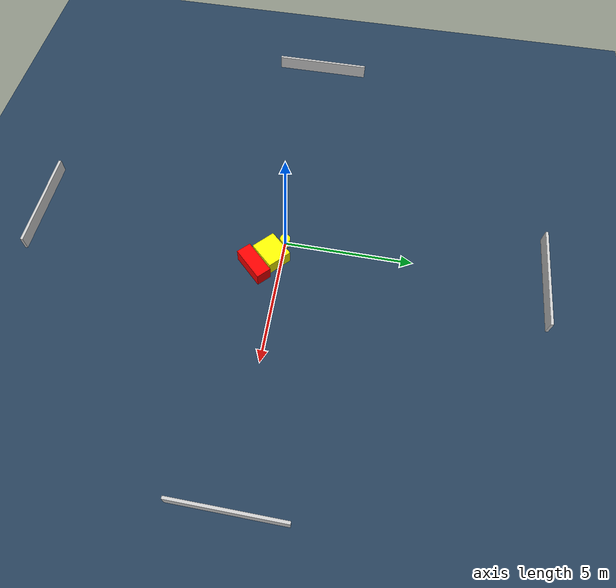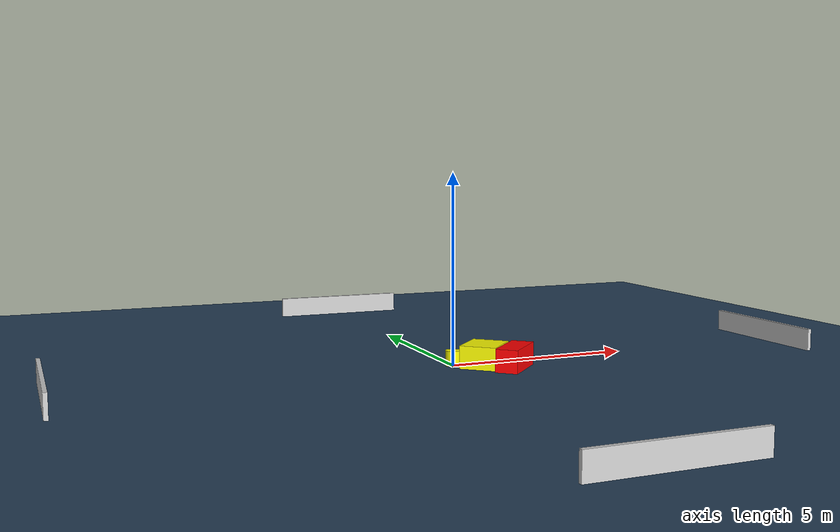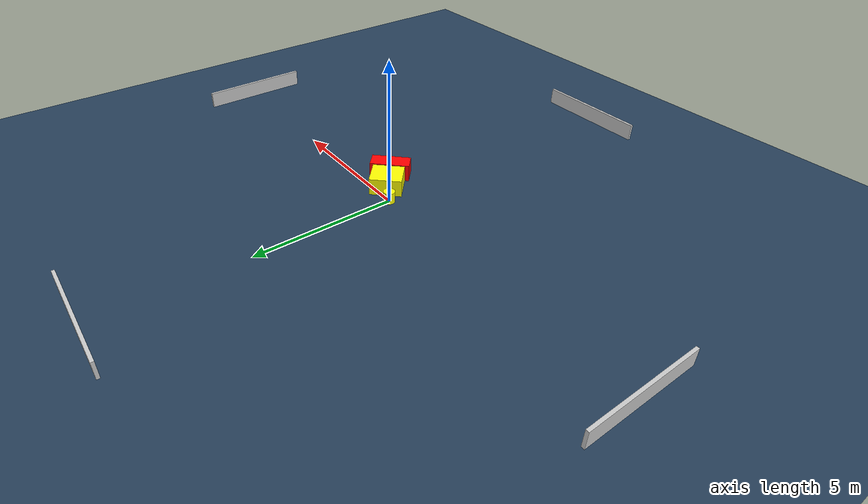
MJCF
<?xml version="1.0" ?>
<mujoco model="generated_environment">
  <option timestep="0.01" integrator="RK4" cone="elliptic"/>
  <default>
    <geom density="1"/>
  </default>
  <asset>
    <texture builtin="gradient" height="3072" name="skybox" rgb1="0.3 0.5 0.7" rgb2="0 0 0" type="skybox" width="512"/>
    <texture builtin="checker" height="300" name="groundplane" rgb1="0.2 0.3 0.4" rgb2="0.1 0.2 0.3" type="2d" width="300"/>
    <material name="groundplane" reflectance="0.2" texrepeat="5 5" texture="groundplane"/>
  </asset>
  <worldbody>
    <light dir="0 0 -1" directional="true" pos="0 0 1.5"/>
    <geom condim="3" friction="0.5 0.005 0.001" material="groundplane" name="floor" pos="0 0 0" size="0 0 0.05" type="plane"/>
    <body name="walls">
      <geom name="wall_1" condim="4" pos="-10.0 0.0 0.3" rgba="0.800000011920929 0.800000011920929 0.800000011920929 1.0" size="0.05 2.0 0.3" type="box"/>
      <geom name="wall_2" condim="4" pos="10.0 0.0 0.3" rgba="0.800000011920929 0.800000011920929 0.800000011920929 1.0" size="0.05 2.0 0.3" type="box"/>
      <geom name="wall_3" condim="4" pos="0.0 -10.0 0.3" rgba="0.800000011920929 0.800000011920929 0.800000011920929 1.0" size="2.0 0.05 0.3" type="box"/>
      <geom name="wall_4" condim="4" pos="0.0 10.0 0.3" rgba="0.800000011920929 0.800000011920929 0.800000011920929 1.0" size="2.0 0.05 0.3" type="box"/>
    </body>
    <body name="robot">
      <joint name="joint_x" type="slide" pos="0 0 0" axis="1 0 0"/>
      <joint name="joint_y" type="slide" pos="0 0 0" axis="0 1 0"/>
      <geom name="robot" type="cylinder" pos="0.0 0.0 0.2" size="0.2 0.2 0.0" mass="5.0" friction="1.0 0.005 0.0001" condim="4" rgba="1.0 1.0 0.0 1.0"/>
    </body>
    <body name="obstacle_1_movable">
      <geom name="obstacle_1_movable" condim="4" pos="0.7022310210981894 -0.4103913589881886 0.3" euler="0 0 316.72027821770376" friction="0.0 0.005 0.001" rgba="1.0 1.0 0.0 1.0" size="0.48231509579992965 0.5540860607595218 0.3" type="box" mass="0.1"/>
      <joint type="free"/>
    </body>
    <body name="obstacle_2_static">
      <geom name="obstacle_2_static" condim="4" pos="1.298408981645216 -0.9797083663716659 0.3" euler="0 0 315.93409264639234" friction="0.0 0.005 0.001" rgba="1.0 0.0 0.0 1.0" size="0.2926279013379091 0.6887563202865841 0.3" type="box"/>
    </body>
  </worldbody>
  <actuator>
    <motor name="actuator_x" joint="joint_x" gear="1" ctrlrange="-1 1"/>
    <motor name="actuator_y" joint="joint_y" gear="1" ctrlrange="-1 1"/>
  </actuator>
</mujoco>
